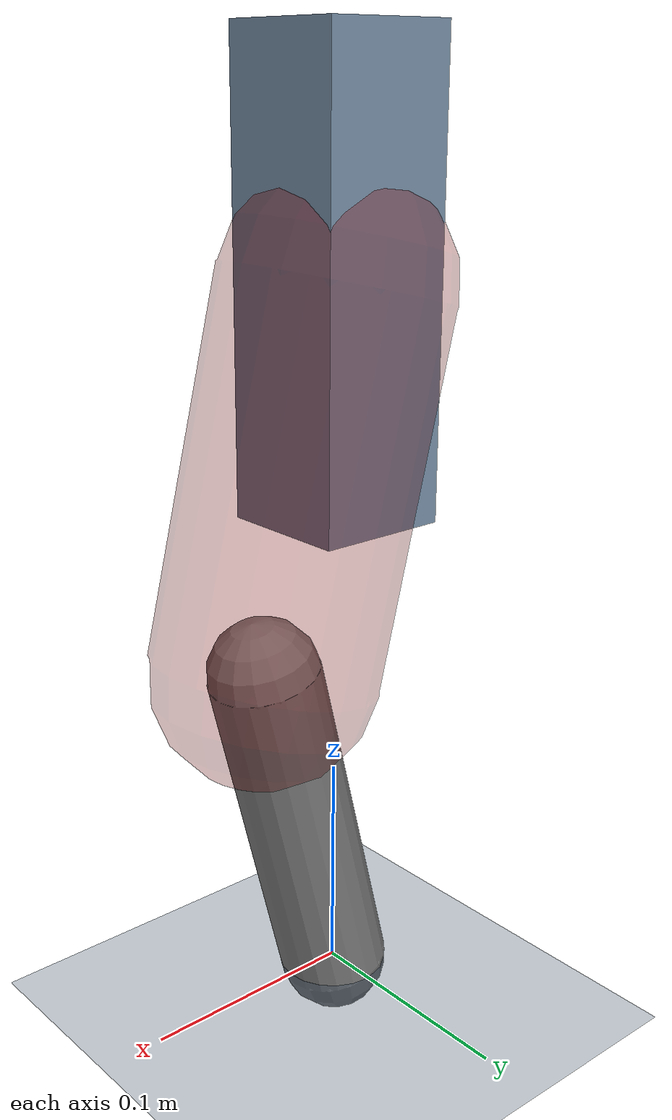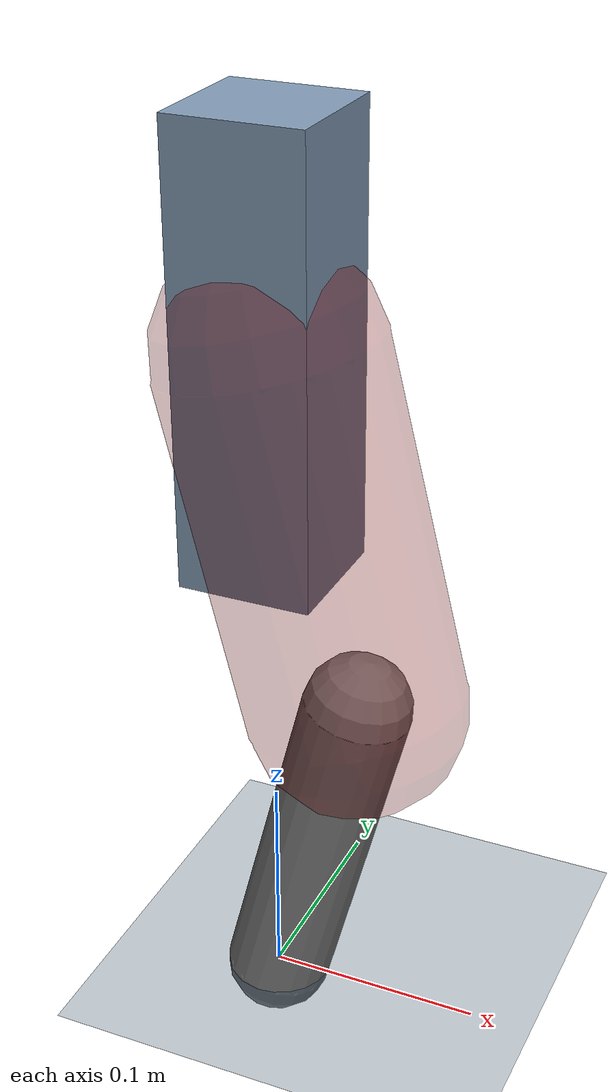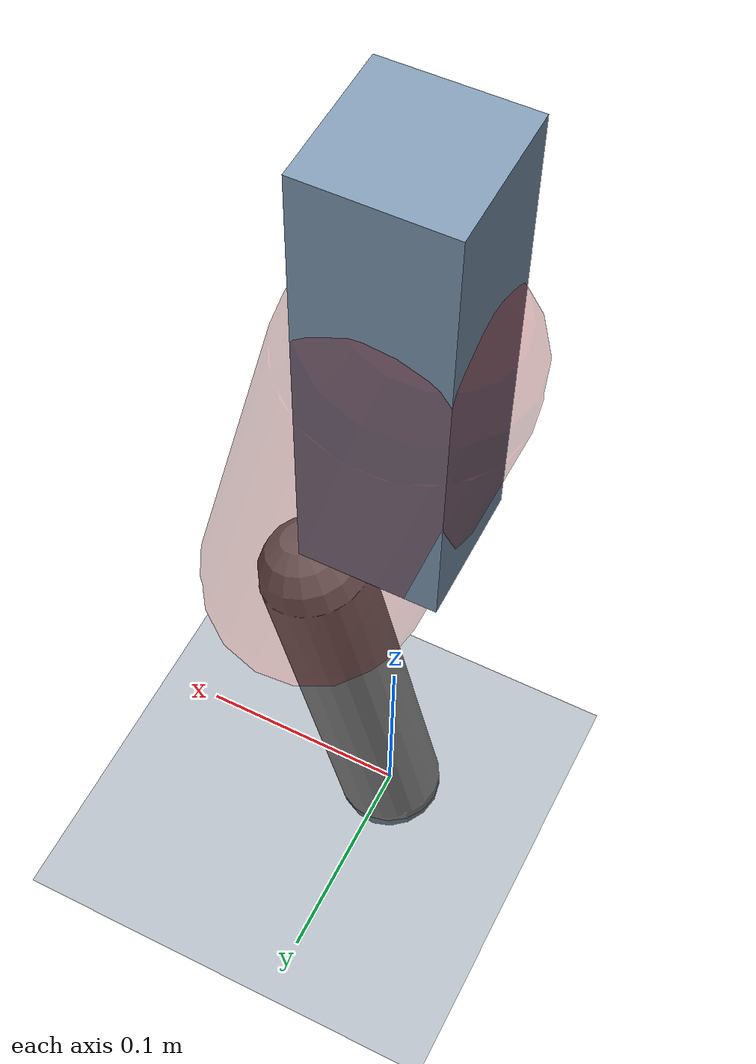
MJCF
<mujoco model="Hopper2D">
	<compiler inertiafromgeom="true" angle="radian" />
	<option timestep="0.001" integrator="implicit" cone="elliptic" solver="Newton" tolerance="1e-10" />

	<default>
		<geom contype="1" conaffinity="1" condim="3" friction="2 0.005 0.0001" solref="0.005 1" />
		<joint limited="true" damping="0.1" />
	</default>

	<asset>
		<texture name="skybox" type="skybox" builtin="gradient" rgb1=".4 .6 .8" rgb2="0 0 0" width="800" height="800" />
		<texture name="grid" type="2d" builtin="checker" rgb1=".1 .2 .3" rgb2=".2 .3 .4" width="300" height="300" mark="edge" markrgb=".2 .3 .4" />
		<material name="ground" texture="grid" texrepeat="1 1" texuniform="true" reflectance="0.1" />
		<material name="leg" rgba="0.5 0.6 0.7 1" />
	</asset>

	<worldbody>

		<geom name="floor" type="plane" size="5 5 0.25" material="ground" />

		<light directional="false" diffuse="0.8 0.8 0.8" specular="0.3 0.3 0.3" pos="0 0 2" dir="0 0 -1" />
		<light mode="targetbodycom" target="base" directional="false" diffuse="0.8 0.8 0.8" specular="0.3 0.3 0.3" pos="0 0 2" dir="0 0 -1" />

		<camera name="fixed" pos="0 -2 1" xyaxes="1 0 0 0 0 1" />
		<camera name="tracking" mode="trackcom" pos="0 -3 1" />

		<body name="root" pos="0 0 0.31872655000289296">
			<joint name="slide_x" type="slide" axis="1 0 0" range="-100 100" />
			<joint name="slide_z" type="slide" axis="0 0 1" range="0 10" />

			<body name="base" pos="0 0 0">
				<geom name="torso" type="box" size="0.03 0.03 0.1" mass="3.207" material="leg" />

				<body name="link1" pos="0 0 0" euler="0 1.3254195419032182 0">
					<joint type="hinge" axis="0 -1 0" pos="0 0 0" name="hinge1" limited="true" range="-3.14 3.14" stiffness="0" damping="0.1" />
					<geom name="thigh" type="capsule" fromto="0 0 0 0.16561293188775186 0 0" size="0.05" rgba="0.5 0 0 0.3" mass="0.6457710365306045" />

					<body name="link2" pos="0.16561293188775186 0 0" euler="0 0.4945925398970944 0">
						<joint type="hinge" axis="0 -1 0" pos="0 0 0" name="hinge2" limited="true" range="-3.14 3.14" stiffness="0" damping="0.1" />
						<geom name="shank" type="capsule" fromto="0 0 0 0.16311361811514108 0 0" size="0.025" mass="0.36930225630362695" />

					</body>
				</body>
			</body>
		</body>
	</worldbody>

	<actuator>
		<motor name="torque1" joint="hinge1" ctrlrange="-160.57242671752638 160.57242671752638" ctrllimited="true" gear="1" />
		<motor name="torque2" joint="hinge2" ctrlrange="-64.53811768847208 64.53811768847208" ctrllimited="true" gear="1" />
	</actuator>
</mujoco>
